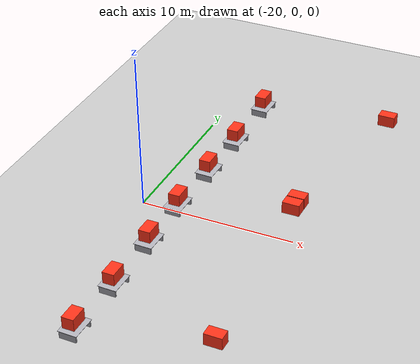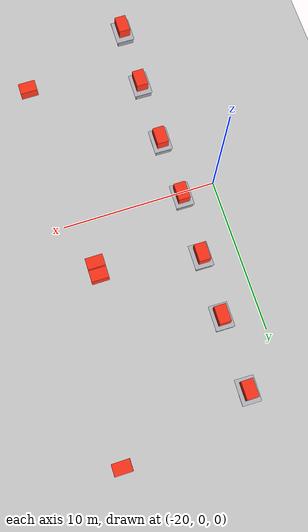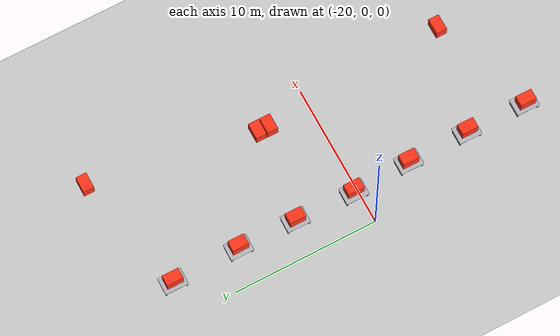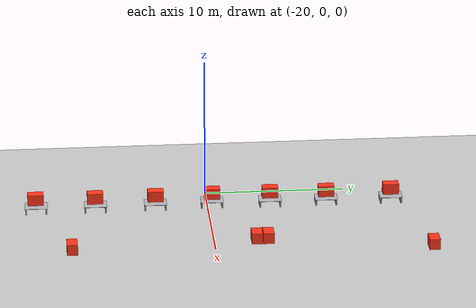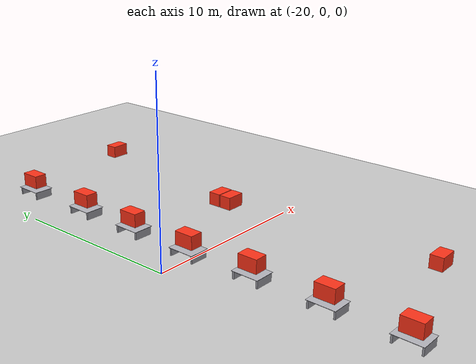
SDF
<sdf version="1.7">
 <world name="default">
  <model name="ground_plane">
   <static>1</static>
   <link name="link">
    <collision name="collision">
     <geometry><plane><normal>0 0 1</normal><size>100 100</size></plane></geometry>
     <surface>
      <contact><collide_bitmask>65535</collide_bitmask></contact>
      <friction>
       <ode><mu>200</mu><mu2>200</mu2><fdir1>0 0 0</fdir1><slip1>0</slip1><slip2>0</slip2></ode>
       <torsional>
        <coefficient>1</coefficient>
        <use_patch_radius>1</use_patch_radius>
        <patch_radius>0.1</patch_radius>
        <ode><slip>0</slip></ode>
       </torsional>
      </friction>
     </surface>
    </collision>
    <visual name="visual">
     <cast_shadows>0</cast_shadows>
     <geometry><plane><normal>0 0 1</normal><size>100 100</size></plane></geometry>
     <material>
      <script><uri>file://media/materials/scripts/gazebo.material</uri><name>Gazebo/Grey</name></script>
     </material>
    </visual>
   </link>
  </model>
  <model name="stand_1_legs">
   <static>1</static>
   <link name="walls_link">
    <collision name="left_wall_col">
     <pose>0.72 0 0.225 0 -0 0</pose>
     <geometry><box><size>0.1 1.06 0.45</size></box></geometry>
     <surface><friction><ode><mu>10</mu><mu2>10</mu2><slip1>0</slip1><slip2>0</slip2></ode></friction></surface>
    </collision>
    <visual name="left_wall_vis">
     <pose>0.72 0 0.225 0 -0 0</pose>
     <geometry><box><size>0.1 1.06 0.45</size></box></geometry>
     <material>
      <ambient>0.6 0.6 0.63 1</ambient>
      <diffuse>0.6 0.6 0.63 1</diffuse>
      <specular>0.3 0.3 0.3 1</specular>
     </material>
    </visual>
    <collision name="right_wall_col">
     <pose>-0.72 0 0.225 0 -0 0</pose>
     <geometry><box><size>0.1 1.06 0.45</size></box></geometry>
     <surface><friction><ode><mu>10</mu><mu2>10</mu2><slip1>0</slip1><slip2>0</slip2></ode></friction></surface>
    </collision>
    <visual name="right_wall_vis">
     <pose>-0.72 0 0.225 0 -0 0</pose>
     <geometry><box><size>0.1 1.06 0.45</size></box></geometry>
     <material>
      <ambient>0.6 0.6 0.63 1</ambient>
      <diffuse>0.6 0.6 0.63 1</diffuse>
      <specular>0.3 0.3 0.3 1</specular>
     </material>
    </visual>
    <inertial>
     <mass>25</mass>
     <inertia><ixx>1.4</ixx><iyy>2.1</iyy><izz>3.2</izz><ixy>0</ixy><ixz>0</ixz><iyz>0</iyz></inertia>
    </inertial>
   </link>
   <pose>-17.6281 4.46335 -3e-06 1.2e-05 1e-06 -1.58718</pose>
  </model>
  <model name="stand_1_top">
   <static>0</static>
   <link name="top_link">
    <collision name="top_plate_col">
     <pose>0 0 0.46 0 -0 0</pose>
     <geometry><box><size>1.6 1.2 0.02</size></box></geometry>
     <surface><friction><ode><mu>10</mu><mu2>10</mu2><slip1>0</slip1><slip2>0</slip2></ode></friction></surface>
    </collision>
    <visual name="top_plate_vis">
     <pose>0 0 0.46 0 -0 0</pose>
     <geometry><box><size>1.6 1.2 0.02</size></box></geometry>
     <material>
      <ambient>0.72 0.72 0.75 1</ambient>
      <diffuse>0.72 0.72 0.75 1</diffuse>
      <specular>0.5 0.5 0.5 1</specular>
     </material>
    </visual>
    <inertial>
     <mass>10</mass>
     <inertia><ixx>0.8</ixx><iyy>1.3</iyy><izz>2</izz><ixy>0</ixy><ixz>0</ixz><iyz>0</iyz></inertia>
    </inertial>
   </link>
   <pose>-17.6282 4.46319 -1.1e-05 1.2e-05 -1e-05 -1.58698</pose>
  </model>
  <model name="stand_1_clone_legs">
   <static>1</static>
   <link name="walls_link">
    <collision name="left_wall_col">
     <pose>0.72 0 0.225 0 -0 0</pose>
     <geometry><box><size>0.1 1.06 0.45</size></box></geometry>
     <surface><friction><ode><mu>10</mu><mu2>10</mu2><slip1>0</slip1><slip2>0</slip2></ode></friction></surface>
    </collision>
    <visual name="left_wall_vis">
     <pose>0.72 0 0.225 0 -0 0</pose>
     <geometry><box><size>0.1 1.06 0.45</size></box></geometry>
     <material>
      <ambient>0.6 0.6 0.63 1</ambient>
      <diffuse>0.6 0.6 0.63 1</diffuse>
      <specular>0.3 0.3 0.3 1</specular>
     </material>
    </visual>
    <collision name="right_wall_col">
     <pose>-0.72 0 0.225 0 -0 0</pose>
     <geometry><box><size>0.1 1.06 0.45</size></box></geometry>
     <surface><friction><ode><mu>10</mu><mu2>10</mu2><slip1>0</slip1><slip2>0</slip2></ode></friction></surface>
    </collision>
    <visual name="right_wall_vis">
     <pose>-0.72 0 0.225 0 -0 0</pose>
     <geometry><box><size>0.1 1.06 0.45</size></box></geometry>
     <material>
      <ambient>0.6 0.6 0.63 1</ambient>
      <diffuse>0.6 0.6 0.63 1</diffuse>
      <specular>0.3 0.3 0.3 1</specular>
     </material>
    </visual>
    <inertial>
     <mass>25</mass>
     <inertia><ixx>1.4</ixx><iyy>2.1</iyy><izz>3.2</izz><ixy>0</ixy><ixz>0</ixz><iyz>0</iyz></inertia>
    </inertial>
   </link>
   <pose>-17.5795 8.4682 -2e-06 5e-06 -0 -1.58628</pose>
  </model>
  <model name="stand_1_clone_top">
   <static>0</static>
   <link name="top_link">
    <collision name="top_plate_col">
     <pose>0 0 0.46 0 -0 0</pose>
     <geometry><box><size>1.6 1.2 0.02</size></box></geometry>
     <surface><friction><ode><mu>10</mu><mu2>10</mu2><slip1>0</slip1><slip2>0</slip2></ode></friction></surface>
    </collision>
    <visual name="top_plate_vis">
     <pose>0 0 0.46 0 -0 0</pose>
     <geometry><box><size>1.6 1.2 0.02</size></box></geometry>
     <material>
      <ambient>0.72 0.72 0.75 1</ambient>
      <diffuse>0.72 0.72 0.75 1</diffuse>
      <specular>0.5 0.5 0.5 1</specular>
     </material>
    </visual>
    <inertial>
     <mass>10</mass>
     <inertia><ixx>0.8</ixx><iyy>1.3</iyy><izz>2</izz><ixy>0</ixy><ixz>0</ixz><iyz>0</iyz></inertia>
    </inertial>
   </link>
   <pose>-17.5797 8.46804 -2e-06 -1e-05 1.3e-05 -1.58617</pose>
  </model>
  <model name="stand_1_clone_0_legs">
   <static>1</static>
   <link name="walls_link">
    <collision name="left_wall_col">
     <pose>0.72 0 0.225 0 -0 0</pose>
     <geometry><box><size>0.1 1.06 0.45</size></box></geometry>
     <surface><friction><ode><mu>10</mu><mu2>10</mu2><slip1>0</slip1><slip2>0</slip2></ode></friction></surface>
    </collision>
    <visual name="left_wall_vis">
     <pose>0.72 0 0.225 0 -0 0</pose>
     <geometry><box><size>0.1 1.06 0.45</size></box></geometry>
     <material>
      <ambient>0.6 0.6 0.63 1</ambient>
      <diffuse>0.6 0.6 0.63 1</diffuse>
      <specular>0.3 0.3 0.3 1</specular>
     </material>
    </visual>
    <collision name="right_wall_col">
     <pose>-0.72 0 0.225 0 -0 0</pose>
     <geometry><box><size>0.1 1.06 0.45</size></box></geometry>
     <surface><friction><ode><mu>10</mu><mu2>10</mu2><slip1>0</slip1><slip2>0</slip2></ode></friction></surface>
    </collision>
    <visual name="right_wall_vis">
     <pose>-0.72 0 0.225 0 -0 0</pose>
     <geometry><box><size>0.1 1.06 0.45</size></box></geometry>
     <material>
      <ambient>0.6 0.6 0.63 1</ambient>
      <diffuse>0.6 0.6 0.63 1</diffuse>
      <specular>0.3 0.3 0.3 1</specular>
     </material>
    </visual>
    <inertial>
     <mass>25</mass>
     <inertia><ixx>1.4</ixx><iyy>2.1</iyy><izz>3.2</izz><ixy>0</ixy><ixz>0</ixz><iyz>0</iyz></inertia>
    </inertial>
   </link>
   <pose>-17.6066 13.1094 0 1e-06 0 -1.58633</pose>
  </model>
  <model name="stand_1_clone_0_top">
   <static>0</static>
   <link name="top_link">
    <collision name="top_plate_col">
     <pose>0 0 0.46 0 -0 0</pose>
     <geometry><box><size>1.6 1.2 0.02</size></box></geometry>
     <surface><friction><ode><mu>10</mu><mu2>10</mu2><slip1>0</slip1><slip2>0</slip2></ode></friction></surface>
    </collision>
    <visual name="top_plate_vis">
     <pose>0 0 0.46 0 -0 0</pose>
     <geometry><box><size>1.6 1.2 0.02</size></box></geometry>
     <material>
      <ambient>0.72 0.72 0.75 1</ambient>
      <diffuse>0.72 0.72 0.75 1</diffuse>
      <specular>0.5 0.5 0.5 1</specular>
     </material>
    </visual>
    <inertial>
     <mass>10</mass>
     <inertia><ixx>0.8</ixx><iyy>1.3</iyy><izz>2</izz><ixy>0</ixy><ixz>0</ixz><iyz>0</iyz></inertia>
    </inertial>
   </link>
   <pose>-17.6066 13.1092 -4.4e-05 4.2e-05 8e-06 -1.5862</pose>
  </model>
  <model name="stand_1_clone_1_legs">
   <static>1</static>
   <link name="walls_link">
    <collision name="left_wall_col">
     <pose>0.72 0 0.225 0 -0 0</pose>
     <geometry><box><size>0.1 1.06 0.45</size></box></geometry>
     <surface><friction><ode><mu>10</mu><mu2>10</mu2><slip1>0</slip1><slip2>0</slip2></ode></friction></surface>
    </collision>
    <visual name="left_wall_vis">
     <pose>0.72 0 0.225 0 -0 0</pose>
     <geometry><box><size>0.1 1.06 0.45</size></box></geometry>
     <material>
      <ambient>0.6 0.6 0.63 1</ambient>
      <diffuse>0.6 0.6 0.63 1</diffuse>
      <specular>0.3 0.3 0.3 1</specular>
     </material>
    </visual>
    <collision name="right_wall_col">
     <pose>-0.72 0 0.225 0 -0 0</pose>
     <geometry><box><size>0.1 1.06 0.45</size></box></geometry>
     <surface><friction><ode><mu>10</mu><mu2>10</mu2><slip1>0</slip1><slip2>0</slip2></ode></friction></surface>
    </collision>
    <visual name="right_wall_vis">
     <pose>-0.72 0 0.225 0 -0 0</pose>
     <geometry><box><size>0.1 1.06 0.45</size></box></geometry>
     <material>
      <ambient>0.6 0.6 0.63 1</ambient>
      <diffuse>0.6 0.6 0.63 1</diffuse>
      <specular>0.3 0.3 0.3 1</specular>
     </material>
    </visual>
    <inertial>
     <mass>25</mass>
     <inertia><ixx>1.4</ixx><iyy>2.1</iyy><izz>3.2</izz><ixy>0</ixy><ixz>0</ixz><iyz>0</iyz></inertia>
    </inertial>
   </link>
   <pose>-17.7499 0.31944 -2e-06 5e-06 -1e-06 -1.58624</pose>
  </model>
  <model name="stand_1_clone_1_top">
   <static>0</static>
   <link name="top_link">
    <collision name="top_plate_col">
     <pose>0 0 0.46 0 -0 0</pose>
     <geometry><box><size>1.6 1.2 0.02</size></box></geometry>
     <surface><friction><ode><mu>10</mu><mu2>10</mu2><slip1>0</slip1><slip2>0</slip2></ode></friction></surface>
    </collision>
    <visual name="top_plate_vis">
     <pose>0 0 0.46 0 -0 0</pose>
     <geometry><box><size>1.6 1.2 0.02</size></box></geometry>
     <material>
      <ambient>0.72 0.72 0.75 1</ambient>
      <diffuse>0.72 0.72 0.75 1</diffuse>
      <specular>0.5 0.5 0.5 1</specular>
     </material>
    </visual>
    <inertial>
     <mass>10</mass>
     <inertia><ixx>0.8</ixx><iyy>1.3</iyy><izz>2</izz><ixy>0</ixy><ixz>0</ixz><iyz>0</iyz></inertia>
    </inertial>
   </link>
   <pose>-17.75 0.31932 -8e-06 -7e-06 -1e-06 -1.58613</pose>
  </model>
  <model name="stand_1_clone_2_legs">
   <static>1</static>
   <link name="walls_link">
    <collision name="left_wall_col">
     <pose>0.72 0 0.225 0 -0 0</pose>
     <geometry><box><size>0.1 1.06 0.45</size></box></geometry>
     <surface><friction><ode><mu>10</mu><mu2>10</mu2><slip1>0</slip1><slip2>0</slip2></ode></friction></surface>
    </collision>
    <visual name="left_wall_vis">
     <pose>0.72 0 0.225 0 -0 0</pose>
     <geometry><box><size>0.1 1.06 0.45</size></box></geometry>
     <material>
      <ambient>0.6 0.6 0.63 1</ambient>
      <diffuse>0.6 0.6 0.63 1</diffuse>
      <specular>0.3 0.3 0.3 1</specular>
     </material>
    </visual>
    <collision name="right_wall_col">
     <pose>-0.72 0 0.225 0 -0 0</pose>
     <geometry><box><size>0.1 1.06 0.45</size></box></geometry>
     <surface><friction><ode><mu>10</mu><mu2>10</mu2><slip1>0</slip1><slip2>0</slip2></ode></friction></surface>
    </collision>
    <visual name="right_wall_vis">
     <pose>-0.72 0 0.225 0 -0 0</pose>
     <geometry><box><size>0.1 1.06 0.45</size></box></geometry>
     <material>
      <ambient>0.6 0.6 0.63 1</ambient>
      <diffuse>0.6 0.6 0.63 1</diffuse>
      <specular>0.3 0.3 0.3 1</specular>
     </material>
    </visual>
    <inertial>
     <mass>25</mass>
     <inertia><ixx>1.4</ixx><iyy>2.1</iyy><izz>3.2</izz><ixy>0</ixy><ixz>0</ixz><iyz>0</iyz></inertia>
    </inertial>
   </link>
   <pose>-17.6177 -3.70917 -5e-06 1.8e-05 -0 -1.58623</pose>
  </model>
  <model name="stand_1_clone_2_top">
   <static>0</static>
   <link name="top_link">
    <collision name="top_plate_col">
     <pose>0 0 0.46 0 -0 0</pose>
     <geometry><box><size>1.6 1.2 0.02</size></box></geometry>
     <surface><friction><ode><mu>10</mu><mu2>10</mu2><slip1>0</slip1><slip2>0</slip2></ode></friction></surface>
    </collision>
    <visual name="top_plate_vis">
     <pose>0 0 0.46 0 -0 0</pose>
     <geometry><box><size>1.6 1.2 0.02</size></box></geometry>
     <material>
      <ambient>0.72 0.72 0.75 1</ambient>
      <diffuse>0.72 0.72 0.75 1</diffuse>
      <specular>0.5 0.5 0.5 1</specular>
     </material>
    </visual>
    <inertial>
     <mass>10</mass>
     <inertia><ixx>0.8</ixx><iyy>1.3</iyy><izz>2</izz><ixy>0</ixy><ixz>0</ixz><iyz>0</iyz></inertia>
    </inertial>
   </link>
   <pose>-17.6177 -3.70921 -7e-05 -2.6e-05 1.6e-05 -1.58613</pose>
  </model>
  <model name="stand_1_clone_3_legs">
   <static>1</static>
   <link name="walls_link">
    <collision name="left_wall_col">
     <pose>0.72 0 0.225 0 -0 0</pose>
     <geometry><box><size>0.1 1.06 0.45</size></box></geometry>
     <surface><friction><ode><mu>10</mu><mu2>10</mu2><slip1>0</slip1><slip2>0</slip2></ode></friction></surface>
    </collision>
    <visual name="left_wall_vis">
     <pose>0.72 0 0.225 0 -0 0</pose>
     <geometry><box><size>0.1 1.06 0.45</size></box></geometry>
     <material>
      <ambient>0.6 0.6 0.63 1</ambient>
      <diffuse>0.6 0.6 0.63 1</diffuse>
      <specular>0.3 0.3 0.3 1</specular>
     </material>
    </visual>
    <collision name="right_wall_col">
     <pose>-0.72 0 0.225 0 -0 0</pose>
     <geometry><box><size>0.1 1.06 0.45</size></box></geometry>
     <surface><friction><ode><mu>10</mu><mu2>10</mu2><slip1>0</slip1><slip2>0</slip2></ode></friction></surface>
    </collision>
    <visual name="right_wall_vis">
     <pose>-0.72 0 0.225 0 -0 0</pose>
     <geometry><box><size>0.1 1.06 0.45</size></box></geometry>
     <material>
      <ambient>0.6 0.6 0.63 1</ambient>
      <diffuse>0.6 0.6 0.63 1</diffuse>
      <specular>0.3 0.3 0.3 1</specular>
     </material>
    </visual>
    <inertial>
     <mass>25</mass>
     <inertia><ixx>1.4</ixx><iyy>2.1</iyy><izz>3.2</izz><ixy>0</ixy><ixz>0</ixz><iyz>0</iyz></inertia>
    </inertial>
   </link>
   <pose>-17.5863 -7.964 -7e-06 0 1.5e-05 -1.58655</pose>
  </model>
  <model name="stand_1_clone_3_top">
   <static>0</static>
   <link name="top_link">
    <collision name="top_plate_col">
     <pose>0 0 0.46 0 -0 0</pose>
     <geometry><box><size>1.6 1.2 0.02</size></box></geometry>
     <surface><friction><ode><mu>10</mu><mu2>10</mu2><slip1>0</slip1><slip2>0</slip2></ode></friction></surface>
    </collision>
    <visual name="top_plate_vis">
     <pose>0 0 0.46 0 -0 0</pose>
     <geometry><box><size>1.6 1.2 0.02</size></box></geometry>
     <material>
      <ambient>0.72 0.72 0.75 1</ambient>
      <diffuse>0.72 0.72 0.75 1</diffuse>
      <specular>0.5 0.5 0.5 1</specular>
     </material>
    </visual>
    <inertial>
     <mass>10</mass>
     <inertia><ixx>0.8</ixx><iyy>1.3</iyy><izz>2</izz><ixy>0</ixy><ixz>0</ixz><iyz>0</iyz></inertia>
    </inertial>
   </link>
   <pose>-17.5863 -7.96415 -1.4e-05 -7e-06 2e-05 -1.58646</pose>
  </model>
  <model name="stand_1_clone_4_legs">
   <static>1</static>
   <link name="walls_link">
    <collision name="left_wall_col">
     <pose>0.72 0 0.225 0 -0 0</pose>
     <geometry><box><size>0.1 1.06 0.45</size></box></geometry>
     <surface><friction><ode><mu>10</mu><mu2>10</mu2><slip1>0</slip1><slip2>0</slip2></ode></friction></surface>
    </collision>
    <visual name="left_wall_vis">
     <pose>0.72 0 0.225 0 -0 0</pose>
     <geometry><box><size>0.1 1.06 0.45</size></box></geometry>
     <material>
      <ambient>0.6 0.6 0.63 1</ambient>
      <diffuse>0.6 0.6 0.63 1</diffuse>
      <specular>0.3 0.3 0.3 1</specular>
     </material>
    </visual>
    <collision name="right_wall_col">
     <pose>-0.72 0 0.225 0 -0 0</pose>
     <geometry><box><size>0.1 1.06 0.45</size></box></geometry>
     <surface><friction><ode><mu>10</mu><mu2>10</mu2><slip1>0</slip1><slip2>0</slip2></ode></friction></surface>
    </collision>
    <visual name="right_wall_vis">
     <pose>-0.72 0 0.225 0 -0 0</pose>
     <geometry><box><size>0.1 1.06 0.45</size></box></geometry>
     <material>
      <ambient>0.6 0.6 0.63 1</ambient>
      <diffuse>0.6 0.6 0.63 1</diffuse>
      <specular>0.3 0.3 0.3 1</specular>
     </material>
    </visual>
    <inertial>
     <mass>25</mass>
     <inertia><ixx>1.4</ixx><iyy>2.1</iyy><izz>3.2</izz><ixy>0</ixy><ixz>0</ixz><iyz>0</iyz></inertia>
    </inertial>
   </link>
   <pose>-17.6339 -12.1584 0 3e-06 2e-06 -1.58716</pose>
  </model>
  <model name="stand_1_clone_4_top">
   <static>0</static>
   <link name="top_link">
    <collision name="top_plate_col">
     <pose>0 0 0.46 0 -0 0</pose>
     <geometry><box><size>1.6 1.2 0.02</size></box></geometry>
     <surface><friction><ode><mu>10</mu><mu2>10</mu2><slip1>0</slip1><slip2>0</slip2></ode></friction></surface>
    </collision>
    <visual name="top_plate_vis">
     <pose>0 0 0.46 0 -0 0</pose>
     <geometry><box><size>1.6 1.2 0.02</size></box></geometry>
     <material>
      <ambient>0.72 0.72 0.75 1</ambient>
      <diffuse>0.72 0.72 0.75 1</diffuse>
      <specular>0.5 0.5 0.5 1</specular>
     </material>
    </visual>
    <inertial>
     <mass>10</mass>
     <inertia><ixx>0.8</ixx><iyy>1.3</iyy><izz>2</izz><ixy>0</ixy><ixz>0</ixz><iyz>0</iyz></inertia>
    </inertial>
   </link>
   <pose>-17.634 -12.1586 -1.1e-05 7e-06 1.5e-05 -1.58702</pose>
  </model>
  <model name="payload_box">
   <link name="link">
    <inertial>
     <mass>15</mass>
     <inertia><ixx>2.32332</ixx><ixy>0</ixy><ixz>0</ixz><iyy>1.43272</iyy><iyz>0</iyz><izz>2.2858</izz></inertia>
    </inertial>
    <visual name="visual">
     <geometry><box><size>0.747047 1.12719 0.766877</size></box></geometry>
     <material>
      <script><name>Gazebo/Grey</name><uri>file://media/materials/scripts/gazebo.material</uri></script>
      <shader type="pixel"><normal_map>__default__</normal_map></shader>
      <ambient>1 0.2 0.1 0</ambient>
      <diffuse>0.7 0.7 0.7 1</diffuse>
      <specular>0.01 0.01 0.01 1</specular>
      <emissive>0 0 0 1</emissive>
     </material>
    </visual>
    <collision name="collision">
     <geometry><box><size>0.747047 1.12719 0.766877</size></box></geometry>
     <surface>
      <friction>
       <ode><mu>1</mu><mu2>1</mu2><fdir1>0 0 0</fdir1><slip1>0</slip1><slip2>0</slip2></ode>
       <torsional>
        <coefficient>1</coefficient>
        <patch_radius>0</patch_radius>
        <surface_radius>0</surface_radius>
        <use_patch_radius>1</use_patch_radius>
        <ode><slip>0</slip></ode>
       </torsional>
      </friction>
      <bounce><restitution_coefficient>0</restitution_coefficient><threshold>1e+06</threshold></bounce>
      <contact>
       <collide_without_contact>0</collide_without_contact>
       <collide_without_contact_bitmask>1</collide_without_contact_bitmask>
       <collide_bitmask>1</collide_bitmask>
       <ode>
        <soft_cfm>0</soft_cfm>
        <soft_erp>0.2</soft_erp>
        <kp>1e+13</kp>
        <kd>1</kd>
        <max_vel>0.01</max_vel>
        <min_depth>0</min_depth>
       </ode>
       <bullet>
        <split_impulse>1</split_impulse>
        <split_impulse_penetration_threshold>-0.01</split_impulse_penetration_threshold>
        <soft_cfm>0</soft_cfm>
        <soft_erp>0.2</soft_erp>
        <kp>1e+13</kp>
        <kd>1</kd>
       </bullet>
      </contact>
     </surface>
    </collision>
   </link>
   <static>0</static>
   <pose>-17.6588 -12.1948 0.997451 2.3e-05 4.6e-05 -0.002745</pose>
  </model>
  <model name="payload_box_clone">
   <link name="link">
    <inertial>
     <mass>15</mass>
     <inertia><ixx>2.32332</ixx><ixy>0</ixy><ixz>0</ixz><iyy>1.43272</iyy><iyz>0</iyz><izz>2.2858</izz></inertia>
    </inertial>
    <visual name="visual">
     <geometry><box><size>0.747047 1.12719 0.766877</size></box></geometry>
     <material>
      <script><name>Gazebo/Grey</name><uri>file://media/materials/scripts/gazebo.material</uri></script>
      <shader type="pixel"><normal_map>__default__</normal_map></shader>
      <ambient>1 0.2 0.1 0</ambient>
      <diffuse>0.7 0.7 0.7 1</diffuse>
      <specular>0.01 0.01 0.01 1</specular>
      <emissive>0 0 0 1</emissive>
     </material>
    </visual>
    <collision name="collision">
     <geometry><box><size>0.747047 1.12719 0.766877</size></box></geometry>
     <surface>
      <friction>
       <ode><mu>1</mu><mu2>1</mu2><fdir1>0 0 0</fdir1><slip1>0</slip1><slip2>0</slip2></ode>
       <torsional>
        <coefficient>1</coefficient>
        <patch_radius>0</patch_radius>
        <surface_radius>0</surface_radius>
        <use_patch_radius>1</use_patch_radius>
        <ode><slip>0</slip></ode>
       </torsional>
      </friction>
      <bounce><restitution_coefficient>0</restitution_coefficient><threshold>1e+06</threshold></bounce>
      <contact>
       <collide_without_contact>0</collide_without_contact>
       <collide_without_contact_bitmask>1</collide_without_contact_bitmask>
       <collide_bitmask>1</collide_bitmask>
       <ode>
        <soft_cfm>0</soft_cfm>
        <soft_erp>0.2</soft_erp>
        <kp>1e+13</kp>
        <kd>1</kd>
        <max_vel>0.01</max_vel>
        <min_depth>0</min_depth>
       </ode>
       <bullet>
        <split_impulse>1</split_impulse>
        <split_impulse_penetration_threshold>-0.01</split_impulse_penetration_threshold>
        <soft_cfm>0</soft_cfm>
        <soft_erp>0.2</soft_erp>
        <kp>1e+13</kp>
        <kd>1</kd>
       </bullet>
      </contact>
     </surface>
    </collision>
   </link>
   <static>0</static>
   <pose>-17.5836 -7.98368 0.997363 7e-06 -1e-05 -0.00279</pose>
  </model>
  <model name="payload_box_clone_0">
   <link name="link">
    <inertial>
     <mass>15</mass>
     <inertia><ixx>2.32332</ixx><ixy>0</ixy><ixz>0</ixz><iyy>1.43272</iyy><iyz>0</iyz><izz>2.2858</izz></inertia>
    </inertial>
    <visual name="visual">
     <geometry><box><size>0.747047 1.12719 0.766877</size></box></geometry>
     <material>
      <script><name>Gazebo/Grey</name><uri>file://media/materials/scripts/gazebo.material</uri></script>
      <shader type="pixel"><normal_map>__default__</normal_map></shader>
      <ambient>1 0.2 0.1 0</ambient>
      <diffuse>0.7 0.7 0.7 1</diffuse>
      <specular>0.01 0.01 0.01 1</specular>
      <emissive>0 0 0 1</emissive>
     </material>
    </visual>
    <collision name="collision">
     <geometry><box><size>0.747047 1.12719 0.766877</size></box></geometry>
     <surface>
      <friction>
       <ode><mu>1</mu><mu2>1</mu2><fdir1>0 0 0</fdir1><slip1>0</slip1><slip2>0</slip2></ode>
       <torsional>
        <coefficient>1</coefficient>
        <patch_radius>0</patch_radius>
        <surface_radius>0</surface_radius>
        <use_patch_radius>1</use_patch_radius>
        <ode><slip>0</slip></ode>
       </torsional>
      </friction>
      <bounce><restitution_coefficient>0</restitution_coefficient><threshold>1e+06</threshold></bounce>
      <contact>
       <collide_without_contact>0</collide_without_contact>
       <collide_without_contact_bitmask>1</collide_without_contact_bitmask>
       <collide_bitmask>1</collide_bitmask>
       <ode>
        <soft_cfm>0</soft_cfm>
        <soft_erp>0.2</soft_erp>
        <kp>1e+13</kp>
        <kd>1</kd>
        <max_vel>0.01</max_vel>
        <min_depth>0</min_depth>
       </ode>
       <bullet>
        <split_impulse>1</split_impulse>
        <split_impulse_penetration_threshold>-0.01</split_impulse_penetration_threshold>
        <soft_cfm>0</soft_cfm>
        <soft_erp>0.2</soft_erp>
        <kp>1e+13</kp>
        <kd>1</kd>
       </bullet>
      </contact>
     </surface>
    </collision>
   </link>
   <static>0</static>
   <pose>-17.6151 -3.68901 0.99734 3e-05 -1.6e-05 -0.000232</pose>
  </model>
  <model name="payload_box_clone_1">
   <link name="link">
    <inertial>
     <mass>15</mass>
     <inertia><ixx>2.32332</ixx><ixy>0</ixy><ixz>0</ixz><iyy>1.43272</iyy><iyz>0</iyz><izz>2.2858</izz></inertia>
    </inertial>
    <visual name="visual">
     <geometry><box><size>0.747047 1.12719 0.766877</size></box></geometry>
     <material>
      <script><name>Gazebo/Grey</name><uri>file://media/materials/scripts/gazebo.material</uri></script>
      <shader type="pixel"><normal_map>__default__</normal_map></shader>
      <ambient>1 0.2 0.1 0</ambient>
      <diffuse>0.7 0.7 0.7 1</diffuse>
      <specular>0.01 0.01 0.01 1</specular>
      <emissive>0 0 0 1</emissive>
     </material>
    </visual>
    <collision name="collision">
     <geometry><box><size>0.747047 1.12719 0.766877</size></box></geometry>
     <surface>
      <friction>
       <ode><mu>1</mu><mu2>1</mu2><fdir1>0 0 0</fdir1><slip1>0</slip1><slip2>0</slip2></ode>
       <torsional>
        <coefficient>1</coefficient>
        <patch_radius>0</patch_radius>
        <surface_radius>0</surface_radius>
        <use_patch_radius>1</use_patch_radius>
        <ode><slip>0</slip></ode>
       </torsional>
      </friction>
      <bounce><restitution_coefficient>0</restitution_coefficient><threshold>1e+06</threshold></bounce>
      <contact>
       <collide_without_contact>0</collide_without_contact>
       <collide_without_contact_bitmask>1</collide_without_contact_bitmask>
       <collide_bitmask>1</collide_bitmask>
       <ode>
        <soft_cfm>0</soft_cfm>
        <soft_erp>0.2</soft_erp>
        <kp>1e+13</kp>
        <kd>1</kd>
        <max_vel>0.01</max_vel>
        <min_depth>0</min_depth>
       </ode>
       <bullet>
        <split_impulse>1</split_impulse>
        <split_impulse_penetration_threshold>-0.01</split_impulse_penetration_threshold>
        <soft_cfm>0</soft_cfm>
        <soft_erp>0.2</soft_erp>
        <kp>1e+13</kp>
        <kd>1</kd>
       </bullet>
      </contact>
     </surface>
    </collision>
   </link>
   <static>0</static>
   <pose>-17.72 0.323062 0.997401 -3.7e-05 4e-06 -0.001268</pose>
  </model>
  <model name="payload_box_clone_2">
   <link name="link">
    <inertial>
     <mass>15</mass>
     <inertia><ixx>2.32332</ixx><ixy>0</ixy><ixz>0</ixz><iyy>1.43272</iyy><iyz>0</iyz><izz>2.2858</izz></inertia>
    </inertial>
    <visual name="visual">
     <geometry><box><size>0.747047 1.12719 0.766877</size></box></geometry>
     <material>
      <script><name>Gazebo/Grey</name><uri>file://media/materials/scripts/gazebo.material</uri></script>
      <shader type="pixel"><normal_map>__default__</normal_map></shader>
      <ambient>1 0.2 0.1 0</ambient>
      <diffuse>0.7 0.7 0.7 1</diffuse>
      <specular>0.01 0.01 0.01 1</specular>
      <emissive>0 0 0 1</emissive>
     </material>
    </visual>
    <collision name="collision">
     <geometry><box><size>0.747047 1.12719 0.766877</size></box></geometry>
     <surface>
      <friction>
       <ode><mu>1</mu><mu2>1</mu2><fdir1>0 0 0</fdir1><slip1>0</slip1><slip2>0</slip2></ode>
       <torsional>
        <coefficient>1</coefficient>
        <patch_radius>0</patch_radius>
        <surface_radius>0</surface_radius>
        <use_patch_radius>1</use_patch_radius>
        <ode><slip>0</slip></ode>
       </torsional>
      </friction>
      <bounce><restitution_coefficient>0</restitution_coefficient><threshold>1e+06</threshold></bounce>
      <contact>
       <collide_without_contact>0</collide_without_contact>
       <collide_without_contact_bitmask>1</collide_without_contact_bitmask>
       <collide_bitmask>1</collide_bitmask>
       <ode>
        <soft_cfm>0</soft_cfm>
        <soft_erp>0.2</soft_erp>
        <kp>1e+13</kp>
        <kd>1</kd>
        <max_vel>0.01</max_vel>
        <min_depth>0</min_depth>
       </ode>
       <bullet>
        <split_impulse>1</split_impulse>
        <split_impulse_penetration_threshold>-0.01</split_impulse_penetration_threshold>
        <soft_cfm>0</soft_cfm>
        <soft_erp>0.2</soft_erp>
        <kp>1e+13</kp>
        <kd>1</kd>
       </bullet>
      </contact>
     </surface>
    </collision>
   </link>
   <static>0</static>
   <pose>-17.6596 4.4528 0.997423 -6e-06 -2.9e-05 -0.003259</pose>
  </model>
  <model name="payload_box_clone_3">
   <link name="link">
    <inertial>
     <mass>15</mass>
     <inertia><ixx>2.32332</ixx><ixy>0</ixy><ixz>0</ixz><iyy>1.43272</iyy><iyz>0</iyz><izz>2.2858</izz></inertia>
    </inertial>
    <visual name="visual">
     <geometry><box><size>0.747047 1.12719 0.766877</size></box></geometry>
     <material>
      <script><name>Gazebo/Grey</name><uri>file://media/materials/scripts/gazebo.material</uri></script>
      <shader type="pixel"><normal_map>__default__</normal_map></shader>
      <ambient>1 0.2 0.1 0</ambient>
      <diffuse>0.7 0.7 0.7 1</diffuse>
      <specular>0.01 0.01 0.01 1</specular>
      <emissive>0 0 0 1</emissive>
     </material>
    </visual>
    <collision name="collision">
     <geometry><box><size>0.747047 1.12719 0.766877</size></box></geometry>
     <surface>
      <friction>
       <ode><mu>1</mu><mu2>1</mu2><fdir1>0 0 0</fdir1><slip1>0</slip1><slip2>0</slip2></ode>
       <torsional>
        <coefficient>1</coefficient>
        <patch_radius>0</patch_radius>
        <surface_radius>0</surface_radius>
        <use_patch_radius>1</use_patch_radius>
        <ode><slip>0</slip></ode>
       </torsional>
      </friction>
      <bounce><restitution_coefficient>0</restitution_coefficient><threshold>1e+06</threshold></bounce>
      <contact>
       <collide_without_contact>0</collide_without_contact>
       <collide_without_contact_bitmask>1</collide_without_contact_bitmask>
       <collide_bitmask>1</collide_bitmask>
       <ode>
        <soft_cfm>0</soft_cfm>
        <soft_erp>0.2</soft_erp>
        <kp>1e+13</kp>
        <kd>1</kd>
        <max_vel>0.01</max_vel>
        <min_depth>0</min_depth>
       </ode>
       <bullet>
        <split_impulse>1</split_impulse>
        <split_impulse_penetration_threshold>-0.01</split_impulse_penetration_threshold>
        <soft_cfm>0</soft_cfm>
        <soft_erp>0.2</soft_erp>
        <kp>1e+13</kp>
        <kd>1</kd>
       </bullet>
      </contact>
     </surface>
    </collision>
   </link>
   <static>0</static>
   <pose>-17.5684 8.46109 0.997427 -6e-06 -5e-06 -0.001764</pose>
  </model>
  <model name="payload_box_clone_4">
   <link name="link">
    <inertial>
     <mass>15</mass>
     <inertia><ixx>2.32332</ixx><ixy>0</ixy><ixz>0</ixz><iyy>1.43272</iyy><iyz>0</iyz><izz>2.2858</izz></inertia>
    </inertial>
    <visual name="visual">
     <geometry><box><size>0.747047 1.12719 0.766877</size></box></geometry>
     <material>
      <script><name>Gazebo/Grey</name><uri>file://media/materials/scripts/gazebo.material</uri></script>
      <shader type="pixel"><normal_map>__default__</normal_map></shader>
      <ambient>1 0.2 0.1 0</ambient>
      <diffuse>0.7 0.7 0.7 1</diffuse>
      <specular>0.01 0.01 0.01 1</specular>
      <emissive>0 0 0 1</emissive>
     </material>
    </visual>
    <collision name="collision">
     <geometry><box><size>0.747047 1.12719 0.766877</size></box></geometry>
     <surface>
      <friction>
       <ode><mu>1</mu><mu2>1</mu2><fdir1>0 0 0</fdir1><slip1>0</slip1><slip2>0</slip2></ode>
       <torsional>
        <coefficient>1</coefficient>
        <patch_radius>0</patch_radius>
        <surface_radius>0</surface_radius>
        <use_patch_radius>1</use_patch_radius>
        <ode><slip>0</slip></ode>
       </torsional>
      </friction>
      <bounce><restitution_coefficient>0</restitution_coefficient><threshold>1e+06</threshold></bounce>
      <contact>
       <collide_without_contact>0</collide_without_contact>
       <collide_without_contact_bitmask>1</collide_without_contact_bitmask>
       <collide_bitmask>1</collide_bitmask>
       <ode>
        <soft_cfm>0</soft_cfm>
        <soft_erp>0.2</soft_erp>
        <kp>1e+13</kp>
        <kd>1</kd>
        <max_vel>0.01</max_vel>
        <min_depth>0</min_depth>
       </ode>
       <bullet>
        <split_impulse>1</split_impulse>
        <split_impulse_penetration_threshold>-0.01</split_impulse_penetration_threshold>
        <soft_cfm>0</soft_cfm>
        <soft_erp>0.2</soft_erp>
        <kp>1e+13</kp>
        <kd>1</kd>
       </bullet>
      </contact>
     </surface>
    </collision>
   </link>
   <static>0</static>
   <pose>-17.618 13.1012 0.997394 -4e-06 -0.000221 -0.003385</pose>
  </model>
  <model name="payload_box_clone_5_clone_1">
   <link name="link">
    <inertial>
     <mass>15</mass>
     <inertia><ixx>2.32332</ixx><ixy>0</ixy><ixz>0</ixz><iyy>1.43272</iyy><iyz>0</iyz><izz>2.2858</izz></inertia>
    </inertial>
    <visual name="visual">
     <geometry><box><size>0.747047 1.12719 0.766877</size></box></geometry>
     <material>
      <script><name>Gazebo/Grey</name><uri>file://media/materials/scripts/gazebo.material</uri></script>
      <shader type="pixel"><normal_map>__default__</normal_map></shader>
      <ambient>1 0.2 0.1 0</ambient>
      <diffuse>0.7 0.7 0.7 1</diffuse>
      <specular>0.01 0.01 0.01 1</specular>
      <emissive>0 0 0 1</emissive>
     </material>
    </visual>
    <collision name="collision">
     <geometry><box><size>0.747047 1.12719 0.766877</size></box></geometry>
     <surface>
      <friction>
       <ode><mu>1</mu><mu2>1</mu2><fdir1>0 0 0</fdir1><slip1>0</slip1><slip2>0</slip2></ode>
       <torsional>
        <coefficient>1</coefficient>
        <patch_radius>0</patch_radius>
        <surface_radius>0</surface_radius>
        <use_patch_radius>1</use_patch_radius>
        <ode><slip>0</slip></ode>
       </torsional>
      </friction>
      <bounce><restitution_coefficient>0</restitution_coefficient><threshold>1e+06</threshold></bounce>
      <contact>
       <collide_without_contact>0</collide_without_contact>
       <collide_without_contact_bitmask>1</collide_without_contact_bitmask>
       <collide_bitmask>1</collide_bitmask>
       <ode>
        <soft_cfm>0</soft_cfm>
        <soft_erp>0.2</soft_erp>
        <kp>1e+13</kp>
        <kd>1</kd>
        <max_vel>0.01</max_vel>
        <min_depth>0</min_depth>
       </ode>
       <bullet>
        <split_impulse>1</split_impulse>
        <split_impulse_penetration_threshold>-0.01</split_impulse_penetration_threshold>
        <soft_cfm>0</soft_cfm>
        <soft_erp>0.2</soft_erp>
        <kp>1e+13</kp>
        <kd>1</kd>
       </bullet>
      </contact>
     </surface>
    </collision>
   </link>
   <static>0</static>
   <pose>-10.3483 -9.87984 0.383438 0 -0 1.57085</pose>
  </model>
  <model name="payload_box_clone_5_clone_14">
   <link name="link">
    <inertial>
     <mass>15</mass>
     <inertia><ixx>2.32332</ixx><ixy>0</ixy><ixz>0</ixz><iyy>1.43272</iyy><iyz>0</iyz><izz>2.2858</izz></inertia>
    </inertial>
    <visual name="visual">
     <geometry><box><size>0.747047 1.12719 0.766877</size></box></geometry>
     <material>
      <script><name>Gazebo/Grey</name><uri>file://media/materials/scripts/gazebo.material</uri></script>
      <shader type="pixel"><normal_map>__default__</normal_map></shader>
      <ambient>1 0.2 0.1 0</ambient>
      <diffuse>0.7 0.7 0.7 1</diffuse>
      <specular>0.01 0.01 0.01 1</specular>
      <emissive>0 0 0 1</emissive>
     </material>
    </visual>
    <collision name="collision">
     <geometry><box><size>0.747047 1.12719 0.766877</size></box></geometry>
     <surface>
      <friction>
       <ode><mu>1</mu><mu2>1</mu2><fdir1>0 0 0</fdir1><slip1>0</slip1><slip2>0</slip2></ode>
       <torsional>
        <coefficient>1</coefficient>
        <patch_radius>0</patch_radius>
        <surface_radius>0</surface_radius>
        <use_patch_radius>1</use_patch_radius>
        <ode><slip>0</slip></ode>
       </torsional>
      </friction>
      <bounce><restitution_coefficient>0</restitution_coefficient><threshold>1e+06</threshold></bounce>
      <contact>
       <collide_without_contact>0</collide_without_contact>
       <collide_without_contact_bitmask>1</collide_without_contact_bitmask>
       <collide_bitmask>1</collide_bitmask>
       <ode>
        <soft_cfm>0</soft_cfm>
        <soft_erp>0.2</soft_erp>
        <kp>1e+13</kp>
        <kd>1</kd>
        <max_vel>0.01</max_vel>
        <min_depth>0</min_depth>
       </ode>
       <bullet>
        <split_impulse>1</split_impulse>
        <split_impulse_penetration_threshold>-0.01</split_impulse_penetration_threshold>
        <soft_cfm>0</soft_cfm>
        <soft_erp>0.2</soft_erp>
        <kp>1e+13</kp>
        <kd>1</kd>
       </bullet>
      </contact>
     </surface>
    </collision>
   </link>
   <static>0</static>
   <pose>-11.2186 2.92965 0.383438 0 -0 1.5709</pose>
  </model>
  <model name="payload_box_clone_5_clone_15">
   <link name="link">
    <inertial>
     <mass>15</mass>
     <inertia><ixx>2.32332</ixx><ixy>0</ixy><ixz>0</ixz><iyy>1.43272</iyy><iyz>0</iyz><izz>2.2858</izz></inertia>
    </inertial>
    <visual name="visual">
     <geometry><box><size>0.747047 1.12719 0.766877</size></box></geometry>
     <material>
      <script><name>Gazebo/Grey</name><uri>file://media/materials/scripts/gazebo.material</uri></script>
      <shader type="pixel"><normal_map>__default__</normal_map></shader>
      <ambient>1 0.2 0.1 0</ambient>
      <diffuse>0.7 0.7 0.7 1</diffuse>
      <specular>0.01 0.01 0.01 1</specular>
      <emissive>0 0 0 1</emissive>
     </material>
    </visual>
    <collision name="collision">
     <geometry><box><size>0.747047 1.12719 0.766877</size></box></geometry>
     <surface>
      <friction>
       <ode><mu>1</mu><mu2>1</mu2><fdir1>0 0 0</fdir1><slip1>0</slip1><slip2>0</slip2></ode>
       <torsional>
        <coefficient>1</coefficient>
        <patch_radius>0</patch_radius>
        <surface_radius>0</surface_radius>
        <use_patch_radius>1</use_patch_radius>
        <ode><slip>0</slip></ode>
       </torsional>
      </friction>
      <bounce><restitution_coefficient>0</restitution_coefficient><threshold>1e+06</threshold></bounce>
      <contact>
       <collide_without_contact>0</collide_without_contact>
       <collide_without_contact_bitmask>1</collide_without_contact_bitmask>
       <collide_bitmask>1</collide_bitmask>
       <ode>
        <soft_cfm>0</soft_cfm>
        <soft_erp>0.2</soft_erp>
        <kp>1e+13</kp>
        <kd>1</kd>
        <max_vel>0.01</max_vel>
        <min_depth>0</min_depth>
       </ode>
       <bullet>
        <split_impulse>1</split_impulse>
        <split_impulse_penetration_threshold>-0.01</split_impulse_penetration_threshold>
        <soft_cfm>0</soft_cfm>
        <soft_erp>0.2</soft_erp>
        <kp>1e+13</kp>
        <kd>1</kd>
       </bullet>
      </contact>
     </surface>
    </collision>
   </link>
   <static>0</static>
   <pose>-11.2119 3.73821 0.383438 0 -0 1.5709</pose>
  </model>
  <model name="payload_box_clone_5_clone_28">
   <link name="link">
    <inertial>
     <mass>15</mass>
     <inertia><ixx>2.32332</ixx><ixy>0</ixy><ixz>0</ixz><iyy>1.43272</iyy><iyz>0</iyz><izz>2.2858</izz></inertia>
    </inertial>
    <visual name="visual">
     <geometry><box><size>0.747047 1.12719 0.766877</size></box></geometry>
     <material>
      <script><name>Gazebo/Grey</name><uri>file://media/materials/scripts/gazebo.material</uri></script>
      <shader type="pixel"><normal_map>__default__</normal_map></shader>
      <ambient>1 0.2 0.1 0</ambient>
      <diffuse>0.7 0.7 0.7 1</diffuse>
      <specular>0.01 0.01 0.01 1</specular>
      <emissive>0 0 0 1</emissive>
     </material>
    </visual>
    <collision name="collision">
     <geometry><box><size>0.747047 1.12719 0.766877</size></box></geometry>
     <surface>
      <friction>
       <ode><mu>1</mu><mu2>1</mu2><fdir1>0 0 0</fdir1><slip1>0</slip1><slip2>0</slip2></ode>
       <torsional>
        <coefficient>1</coefficient>
        <patch_radius>0</patch_radius>
        <surface_radius>0</surface_radius>
        <use_patch_radius>1</use_patch_radius>
        <ode><slip>0</slip></ode>
       </torsional>
      </friction>
      <bounce><restitution_coefficient>0</restitution_coefficient><threshold>1e+06</threshold></bounce>
      <contact>
       <collide_without_contact>0</collide_without_contact>
       <collide_without_contact_bitmask>1</collide_without_contact_bitmask>
       <collide_bitmask>1</collide_bitmask>
       <ode>
        <soft_cfm>0</soft_cfm>
        <soft_erp>0.2</soft_erp>
        <kp>1e+13</kp>
        <kd>1</kd>
        <max_vel>0.01</max_vel>
        <min_depth>0</min_depth>
       </ode>
       <bullet>
        <split_impulse>1</split_impulse>
        <split_impulse_penetration_threshold>-0.01</split_impulse_penetration_threshold>
        <soft_cfm>0</soft_cfm>
        <soft_erp>0.2</soft_erp>
        <kp>1e+13</kp>
        <kd>1</kd>
       </bullet>
      </contact>
     </surface>
    </collision>
   </link>
   <static>0</static>
   <pose>-9.23292 15.0247 0.383438 0 -0 1.5709</pose>
  </model>
 </world>
</sdf>
